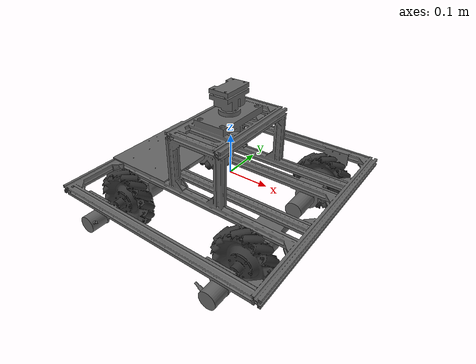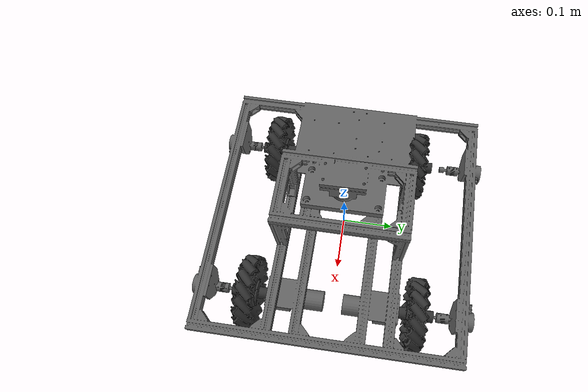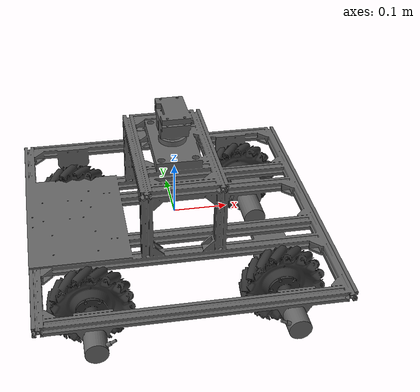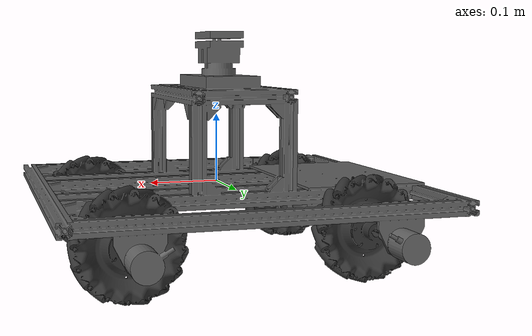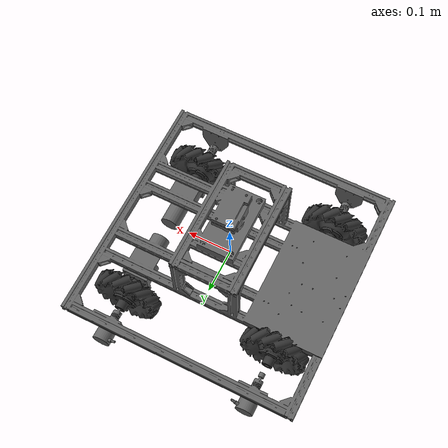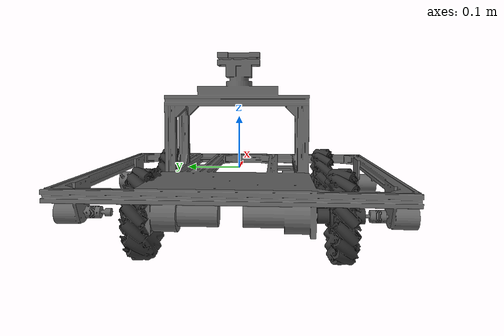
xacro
<?xml version="1.0"?>
<robot name="slave" xmlns:xacro="http://ros.org/wiki/xacro">
  <material name="black"><color rgba="0.15 0.15 0.15 1.0" /></material>
  <material name="dark_grey"><color rgba="0.2 0.2 0.2 1.0" /></material>
  <material name="light_grey"><color rgba="0.4 0.4 0.4 1.0" /></material>

  <link name="base_linkslave">
    <inertial>
      <origin
        xyz="-0.0152231861455379 -0.000658896853065293 0.00462791999209499"
        rpy="0 0 0" />
      <mass value="2.88777277561288" />
      <inertia
        ixx="0.00797084962401825"
        ixy="8.52748529860987E-07"
        ixz="1.52729383606489E-08"
        iyy="0.0120968362106616"
        iyz="-2.1642242280147E-09"
        izz="0.0192370157537437" />
    </inertial>
    <visual>
      <origin xyz="0 0 0" rpy="0 0 0" />
      <geometry>
        <mesh filename="package://holo_description/meshes/base_link.STL" />
      </geometry>
      <material name="light_grey"/>
    </visual>
    <collision>
      <origin
        xyz="0 0 0"
        rpy="0 0 0" />
      <geometry>
        <mesh
          filename="package://holo_description/meshes/base_link.STL" />
      </geometry>
    </collision>
  </link>

  <link name="front_left_wheel_linkslave">
    <inertial>
      <origin
        xyz="1.39499770284435E-05 0.0139727319091172 0.000143157356134856"
        rpy="0 0 0" />
      <mass value="0.214384874801475" />
      <inertia
        ixx="8.11116107745398E-05"
        ixy="-3.51840310124305E-09"
        ixz="-7.42437562435213E-10"
        iyy="0.000138040069650481"
        iyz="4.83909213339643E-09"
        izz="8.11393331481548E-05" />
    </inertial>
    <visual>
      <origin
        xyz="0 0 0"
        rpy="0 0 0" />
      <geometry>
        <mesh filename="package://holo_description/meshes/fl_wheel.STL" />
      </geometry>
      <material name="dark_grey"/>
    </visual>
    <collision>
      <origin
        xyz="0 0 0"
        rpy="0 0 0" />
      <geometry>
        <mesh filename="package://holo_description/meshes/fl_wheel.STL" />
      </geometry>
    </collision>
  </link>

  <joint name="front_left_wheel_jointslave" type="continuous">
    <origin xyz="0.16459 0.1563 -0.053988" rpy="0 0 0" />
    <parent link="base_linkslave" />
    <child link="front_left_wheel_linkslave" />
    <axis xyz="0 -1 0" />
    <limit
      lower="0"
      upper="0"
      effort="0"
      velocity="0" />
  </joint>

  <link name="front_right_wheel_linkslave">
    <inertial>
      <origin xyz="-1.13857938133233E-06 -0.0136728548332186 0.000402546759857299" rpy="0 0 0" />
      <mass value="0.21438487480186" />
      <inertia
        ixx="8.1082875085575E-05"
        ixy="-9.08915629734892E-12"
        ixz="6.02319087273385E-10"
        iyy="0.000138039806510861"
        iyz="-2.1336799087962E-13"
        izz="8.11680313284024E-05" />
    </inertial>
    <visual>
      <origin xyz="0 0 0" rpy="0 0 0" />
      <geometry>
        <mesh filename="package://holo_description/meshes/fr_wheel.STL" />
      </geometry>
      <material name="dark_grey"/>
    </visual>
    <collision>
      <origin
        xyz="0 0 0"
        rpy="0 0 0" />
      <geometry>
        <mesh
          filename="package://holo_description/meshes/fr_wheel.STL" />
      </geometry>
    </collision>
  </link>

  <joint name="front_right_wheel_jointslave" type="continuous">
    <origin xyz="0.16459 -0.18924 -0.053988" rpy="3.1416 0 0" />
    <parent link="base_linkslave" />
    <child link="front_right_wheel_linkslave" />
    <axis xyz="0 -1 0" />
    <limit
      lower="0"
      upper="0"
      effort="0"
      velocity="0" />
  </joint>

  <link name="back_left_wheel_linkslave">
    <inertial>
      <origin xyz="0.000402199221493926 0.0136728548332586 -1.67623526500446E-05" rpy="0 0 0" />
      <mass value="0.214384874801844" />
      <inertia
        ixx="8.11680929101323E-05"
        ixy="6.05238310369855E-13"
        ixz="-2.70225305153216E-09"
        iyy="0.000138040068679994"
        iyz="9.17481040453078E-12"
        izz="8.108309974878E-05" />
    </inertial>
    <visual>
      <origin xyz="0 0 0" rpy="0 0 0" />
      <geometry>
        <mesh filename="package://holo_description/meshes/bl_wheel.STL" />
      </geometry>
      <material name="dark_grey"/>
    </visual>
    <collision>
      <origin xyz="0 0 0" rpy="0 0 0" />
      <geometry>
        <mesh filename="package://holo_description/meshes/bl_wheel.STL" />
      </geometry>
    </collision>
  </link>

  <joint name="back_left_wheel_jointslave" type="continuous">
    <origin xyz="-0.17584 0.1563 -0.05397" rpy="0 0 0" />
    <parent link="base_linkslave" />
    <child link="back_left_wheel_linkslave" />
    <axis xyz="0 -1 0" />
    <limit
      lower="0"
      upper="0"
      effort="0"
      velocity="0" />
  </joint>

  <link name="back_right_wheel_linkslave">
    <inertial>
      <origin xyz="2.97057800492107E-05 -0.0139727318912169 -0.000140734494857936" rpy="0 0 0" />
      <mass value="0.214384874803118" />
      <inertia
        ixx="8.11117254097731E-05"
        ixy="2.96144652416428E-09"
        ixz="-2.32448996986592E-09"
        iyy="0.000138039953813258"
        iyz="5.19855551498919E-09"
        izz="8.11390955034462E-05" />
    </inertial>
    <visual>
      <origin xyz="0 0 0" rpy="0 0 0" />
      <geometry>
        <mesh filename="package://holo_description/meshes/br_wheel.STL" />
      </geometry>
      <material name="dark_grey"/>
    </visual>
    <collision>
      <origin xyz="0 0 0" rpy="0 0 0" />
      <geometry>
        <mesh filename="package://holo_description/meshes/br_wheel.STL" />
      </geometry>
    </collision>
  </link>

  <joint name="back_right_wheel_jointslave" type="continuous">
    <origin xyz="-0.17562 -0.18989 -0.05414" rpy="3.1416 0 0" />
    <parent link="base_linkslave" />
    <child link="back_right_wheel_linkslave" />
    <axis xyz="0 -1 0" />
    <limit
      lower="0"
      upper="0"
      effort="0"
      velocity="0" />
  </joint>
  <!-- Include controller plugin for Gazebo -->
  <xacro:include filename="$(find holo_description)/urdf/holo.gazebo"/>

</robot>
